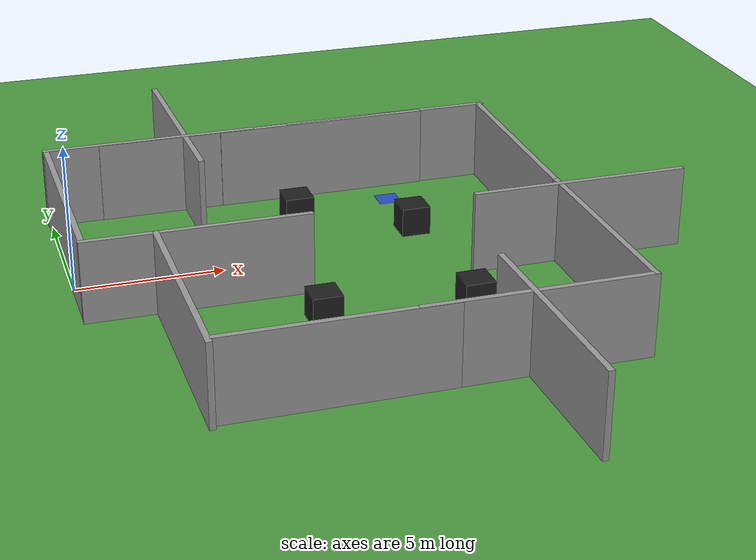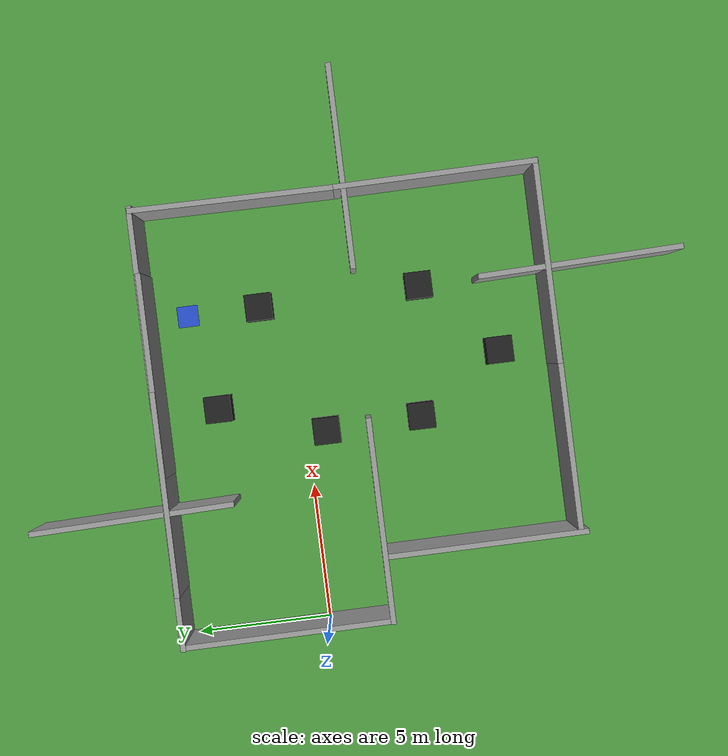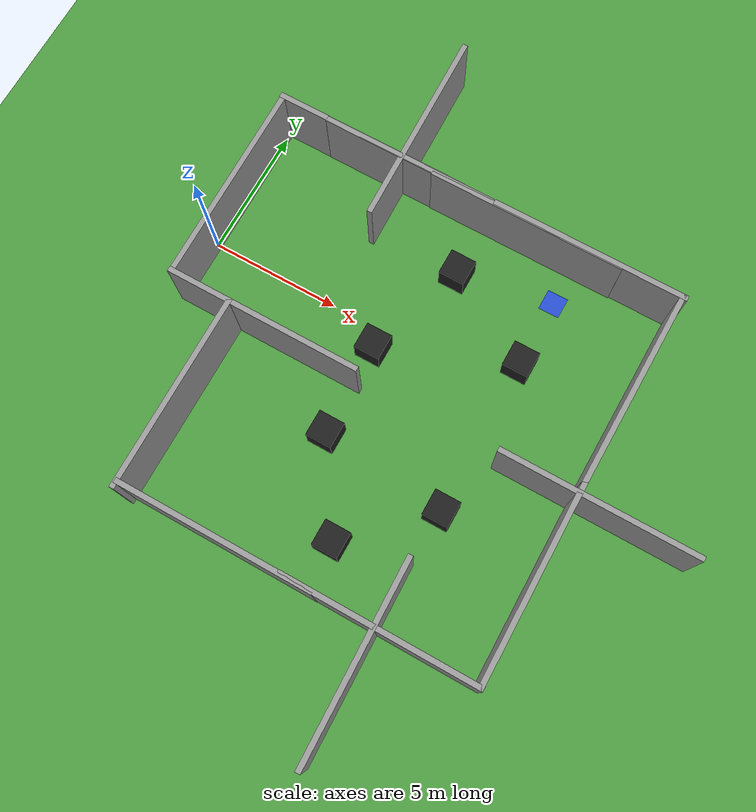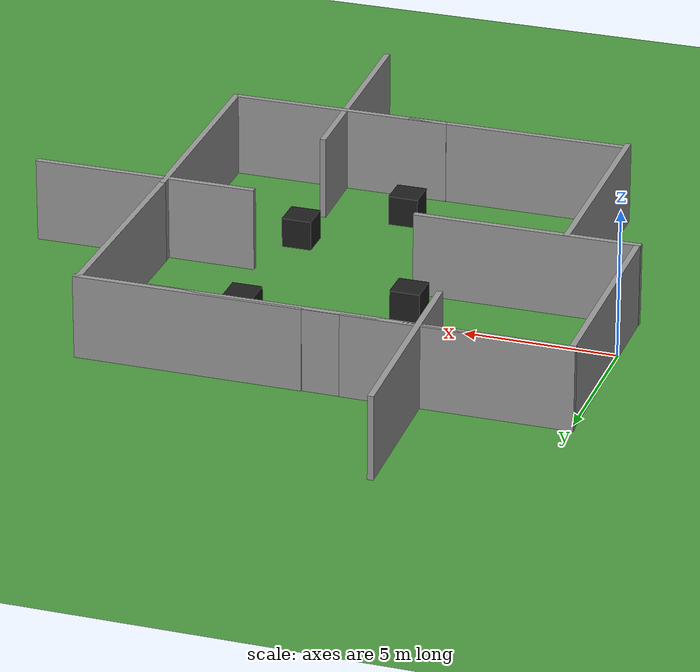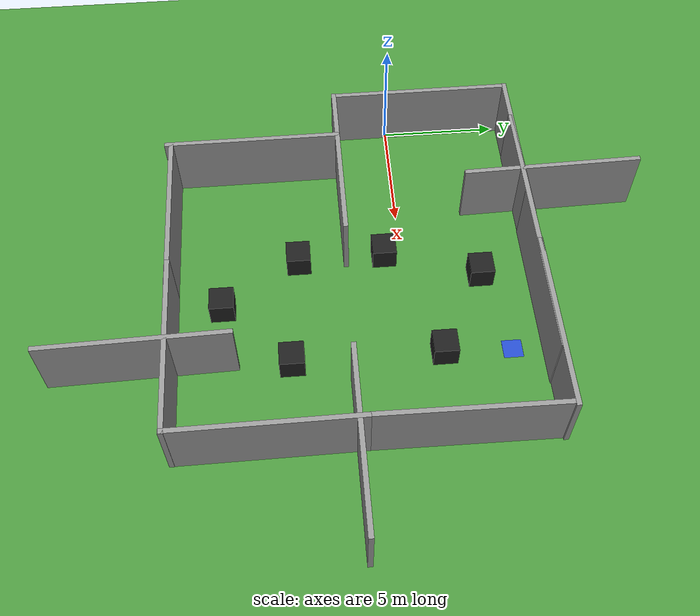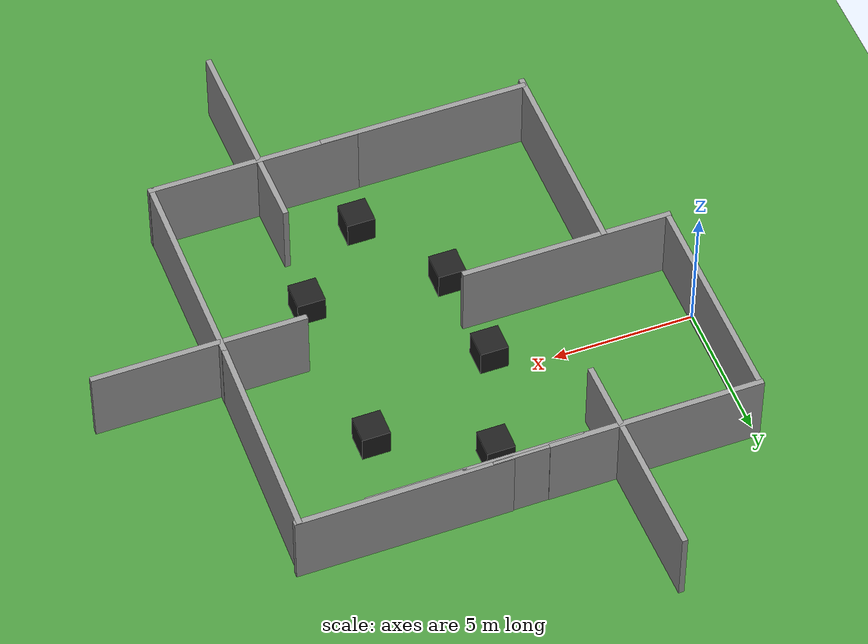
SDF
<sdf version="1.7">
 <world name="default">
  <model name="ground_plane">
   <static>1</static>
   <link name="link">
    <collision name="collision">
     <geometry><plane><normal>0 0 1</normal><size>100 100</size></plane></geometry>
     <surface><friction><ode><mu>100</mu><mu2>50</mu2></ode></friction></surface>
    </collision>
    <visual name="visual">
     <cast_shadows>0</cast_shadows>
     <geometry><plane><normal>0 0 1</normal><size>100 100</size></plane></geometry>
     <material>
      <script><uri>file://media/materials/scripts/gazebo.material</uri><name>Gazebo/Grass</name></script>
     </material>
    </visual>
   </link>
  </model>
  <model name="floor_special_12_4">
   <static>1</static>
   <link name="link">
    <collision name="collision">
     <geometry><plane><normal>0 0 2</normal><size>0.8 0.8</size></plane></geometry>
    </collision>
    <visual name="visual">
     <geometry><plane><normal>0 0 2</normal><size>0.8 0.8</size></plane></geometry>
     <material>
      <script><uri>file://media/materials/scripts/gazebo.material</uri><name>Gazebo/Blue</name></script>
     </material>
    </visual>
   </link>
   <pose>12 4 0.01 0 -0 0</pose>
  </model>
  <light name="sun" type="directional">
   <pose>0 0 10 0 -0 0</pose>
   <diffuse>0.8 0.8 0.8 1</diffuse>
   <specular>0.1 0.1 0.1 1</specular>
   <attenuation>
    <range>1000</range>
    <constant>0.9</constant>
    <linear>0.01</linear>
    <quadratic>0.001</quadratic>
   </attenuation>
   <direction>-0.5 0.5 -1</direction>
   <spot><inner_angle>0</inner_angle><outer_angle>0</outer_angle><falloff>0</falloff></spot>
  </light>
  <physics name="default_physics" default="0" type="ode">
   <max_step_size>0.001</max_step_size>
   <real_time_factor>1</real_time_factor>
   <real_time_update_rate>1000</real_time_update_rate>
  </physics>
  <gravity>0 0 -9.81</gravity>
  <magnetic_field>6e-06 2.3e-05 -4.2e-05</magnetic_field>
  <atmosphere type="adiabatic"/>
  <scene><ambient>0.4 0.4 0.4 1</ambient><background>0.7 0.7 0.7 1</background><shadows>1</shadows></scene>
  <spherical_coordinates>
   <surface_model>EARTH_WGS84</surface_model>
   <latitude_deg>0</latitude_deg>
   <longitude_deg>0</longitude_deg>
   <elevation>0</elevation>
   <heading_deg>0</heading_deg>
  </spherical_coordinates>
  <model name="grey_wall">
   <static>1</static>
   <link name="link">
    <pose>0 0 1.4 0 -0 0</pose>
    <collision name="collision"><geometry><box><size>7.5 0.2 2.8</size></box></geometry></collision>
    <visual name="visual">
     <cast_shadows>0</cast_shadows>
     <geometry><box><size>7.5 0.2 2.8</size></box></geometry>
     <material>
      <script>
       <uri>model://grey_wall/materials/scripts</uri>
       <uri>model://grey_wall/materials/textures</uri>
       <name>vrc/grey_wall</name>
      </script>
     </material>
    </visual>
   </link>
   <pose>5.57602 5.30516 0 0 -0 0</pose>
  </model>
  <model name="grey_wall_0">
   <static>1</static>
   <link name="link">
    <pose>0 0 1.4 0 -0 0</pose>
    <collision name="collision"><geometry><box><size>7.5 0.2 2.8</size></box></geometry></collision>
    <visual name="visual">
     <cast_shadows>0</cast_shadows>
     <geometry><box><size>7.5 0.2 2.8</size></box></geometry>
     <material>
      <script>
       <uri>model://grey_wall/materials/scripts</uri>
       <uri>model://grey_wall/materials/textures</uri>
       <name>vrc/grey_wall</name>
      </script>
     </material>
    </visual>
   </link>
   <pose>3.62616 5.3185 0 0 -0 0</pose>
  </model>
  <model name="grey_wall_1">
   <static>1</static>
   <link name="link">
    <pose>0 0 1.4 0 -0 0</pose>
    <collision name="collision"><geometry><box><size>7.5 0.2 2.8</size></box></geometry></collision>
    <visual name="visual">
     <cast_shadows>0</cast_shadows>
     <geometry><box><size>7.5 0.2 2.8</size></box></geometry>
     <material>
      <script>
       <uri>model://grey_wall/materials/scripts</uri>
       <uri>model://grey_wall/materials/textures</uri>
       <name>vrc/grey_wall</name>
      </script>
     </material>
    </visual>
   </link>
   <pose>9.8983 5.28766 0 0 -0 0</pose>
  </model>
  <model name="grey_wall_2">
   <static>1</static>
   <link name="link">
    <pose>0 0 1.4 0 -0 0</pose>
    <collision name="collision"><geometry><box><size>7.5 0.2 2.8</size></box></geometry></collision>
    <visual name="visual">
     <cast_shadows>0</cast_shadows>
     <geometry><box><size>7.5 0.2 2.8</size></box></geometry>
     <material>
      <script>
       <uri>model://grey_wall/materials/scripts</uri>
       <uri>model://grey_wall/materials/textures</uri>
       <name>vrc/grey_wall</name>
      </script>
     </material>
    </visual>
   </link>
   <pose>15.8945 1.65724 0 0 0 -1.57903</pose>
  </model>
  <model name="grey_wall_4">
   <static>1</static>
   <link name="link">
    <pose>0 0 1.4 0 -0 0</pose>
    <collision name="collision"><geometry><box><size>7.5 0.2 2.8</size></box></geometry></collision>
    <visual name="visual">
     <cast_shadows>0</cast_shadows>
     <geometry><box><size>7.5 0.2 2.8</size></box></geometry>
     <material>
      <script>
       <uri>model://grey_wall/materials/scripts</uri>
       <uri>model://grey_wall/materials/textures</uri>
       <name>vrc/grey_wall</name>
      </script>
     </material>
    </visual>
   </link>
   <pose>3.68458 -2.34632 0 0 -0 0</pose>
  </model>
  <model name="grey_wall_5">
   <static>1</static>
   <link name="link">
    <pose>0 0 1.4 0 -0 0</pose>
    <collision name="collision"><geometry><box><size>7.5 0.2 2.8</size></box></geometry></collision>
    <visual name="visual">
     <cast_shadows>0</cast_shadows>
     <geometry><box><size>7.5 0.2 2.8</size></box></geometry>
     <material>
      <script>
       <uri>model://grey_wall/materials/scripts</uri>
       <uri>model://grey_wall/materials/textures</uri>
       <name>vrc/grey_wall</name>
      </script>
     </material>
    </visual>
   </link>
   <pose>15.9016 -5.80972 0 0 0 -1.56242</pose>
  </model>
  <model name="grey_wall_7">
   <static>1</static>
   <link name="link">
    <pose>0 0 1.4 0 -0 0</pose>
    <collision name="collision"><geometry><box><size>7.5 0.2 2.8</size></box></geometry></collision>
    <visual name="visual">
     <cast_shadows>0</cast_shadows>
     <geometry><box><size>7.5 0.2 2.8</size></box></geometry>
     <material>
      <script>
       <uri>model://grey_wall/materials/scripts</uri>
       <uri>model://grey_wall/materials/textures</uri>
       <name>vrc/grey_wall</name>
      </script>
     </material>
    </visual>
   </link>
   <pose>0.028426 1.48542 0 0 0 -1.56467</pose>
  </model>
  <model name="grey_wall_10">
   <static>1</static>
   <link name="link">
    <pose>0 0 1.4 0 -0 0</pose>
    <collision name="collision"><geometry><box><size>7.5 0.2 2.8</size></box></geometry></collision>
    <visual name="visual">
     <cast_shadows>0</cast_shadows>
     <geometry><box><size>7.5 0.2 2.8</size></box></geometry>
     <material>
      <script>
       <uri>model://grey_wall/materials/scripts</uri>
       <uri>model://grey_wall/materials/textures</uri>
       <name>vrc/grey_wall</name>
      </script>
     </material>
    </visual>
   </link>
   <pose>2.392 -6.01294 0 0 0 -1.56521</pose>
  </model>
  <model name="grey_wall_11">
   <static>1</static>
   <link name="link">
    <pose>0 0 1.4 0 -0 0</pose>
    <collision name="collision"><geometry><box><size>7.5 0.2 2.8</size></box></geometry></collision>
    <visual name="visual">
     <cast_shadows>0</cast_shadows>
     <geometry><box><size>7.5 0.2 2.8</size></box></geometry>
     <material>
      <script>
       <uri>model://grey_wall/materials/scripts</uri>
       <uri>model://grey_wall/materials/textures</uri>
       <name>vrc/grey_wall</name>
      </script>
     </material>
    </visual>
   </link>
   <pose>12.2945 -9.46838 0 0 -0 0</pose>
  </model>
  <model name="grey_wall_13">
   <static>1</static>
   <link name="link">
    <pose>0 0 1.4 0 -0 0</pose>
    <collision name="collision"><geometry><box><size>7.5 0.2 2.8</size></box></geometry></collision>
    <visual name="visual">
     <cast_shadows>0</cast_shadows>
     <geometry><box><size>7.5 0.2 2.8</size></box></geometry>
     <material>
      <script>
       <uri>model://grey_wall/materials/scripts</uri>
       <uri>model://grey_wall/materials/textures</uri>
       <name>vrc/grey_wall</name>
      </script>
     </material>
    </visual>
   </link>
   <pose>6.11059 -9.47971 0 0 -0 0</pose>
  </model>
  <model name="grey_wall_21">
   <static>1</static>
   <link name="link">
    <pose>0 0 1.4 0 -0 0</pose>
    <collision name="collision"><geometry><box><size>7.5 0.2 2.8</size></box></geometry></collision>
    <visual name="visual">
     <cast_shadows>0</cast_shadows>
     <geometry><box><size>7.5 0.2 2.8</size></box></geometry>
     <material>
      <script>
       <uri>model://grey_wall/materials/scripts</uri>
       <uri>model://grey_wall/materials/textures</uri>
       <name>vrc/grey_wall</name>
      </script>
     </material>
    </visual>
   </link>
   <pose>12.3522 5.32968 0 0 -0 0</pose>
  </model>
  <model name="grey_wall_28">
   <static>1</static>
   <link name="link">
    <pose>0 0 1.4 0 -0 0</pose>
    <collision name="collision"><geometry><box><size>7.5 0.2 2.8</size></box></geometry></collision>
    <visual name="visual">
     <cast_shadows>0</cast_shadows>
     <geometry><box><size>7.5 0.2 2.8</size></box></geometry>
     <material>
      <script>
       <uri>model://grey_wall/materials/scripts</uri>
       <uri>model://grey_wall/materials/textures</uri>
       <name>vrc/grey_wall</name>
      </script>
     </material>
    </visual>
   </link>
   <pose>16.6058 -2.4643 0 0 -0 0</pose>
  </model>
  <model name="unit_box_0">
   <pose>9.29592 -7.55171 0.505 0 -0 0</pose>
   <link name="link">
    <inertial>
     <mass>1</mass>
     <inertia>
      <ixx>0.166667</ixx>
      <ixy>0</ixy>
      <ixz>0</ixz>
      <iyy>0.166667</iyy>
      <iyz>0</iyz>
      <izz>0.166667</izz>
     </inertia>
    </inertial>
    <collision name="collision"><geometry><box><size>1 1 1</size></box></geometry></collision>
    <visual name="visual">
     <geometry><box><size>1 1 1</size></box></geometry>
     <material>
      <script><name>Gazebo/FlatBlack</name><uri>file://media/materials/scripts/gazebo.material</uri></script>
     </material>
    </visual>
   </link>
  </model>
  <model name="unit_box_1">
   <pose>7.19763 -4.34456 0.505 0 -0 0</pose>
   <link name="link">
    <inertial>
     <mass>1</mass>
     <inertia>
      <ixx>0.166667</ixx>
      <ixy>0</ixy>
      <ixz>0</ixz>
      <iyy>0.166667</iyy>
      <iyz>0</iyz>
      <izz>0.166667</izz>
     </inertia>
    </inertial>
    <collision name="collision"><geometry><box><size>1 1 1</size></box></geometry></collision>
    <visual name="visual">
     <geometry><box><size>1 1 1</size></box></geometry>
     <material>
      <script><name>Gazebo/FlatBlack</name><uri>file://media/materials/scripts/gazebo.material</uri></script>
     </material>
    </visual>
   </link>
  </model>
  <model name="unit_box_3">
   <pose>7.07102 -0.73722 0.505 0 -0 0</pose>
   <link name="link">
    <inertial>
     <mass>1</mass>
     <inertia>
      <ixx>0.166667</ixx>
      <ixy>0</ixy>
      <ixz>0</ixz>
      <iyy>0.166667</iyy>
      <iyz>0</iyz>
      <izz>0.166667</izz>
     </inertia>
    </inertial>
    <collision name="collision"><geometry><box><size>1 1 1</size></box></geometry></collision>
    <visual name="visual">
     <geometry><box><size>1 1 1</size></box></geometry>
     <material>
      <script><name>Gazebo/FlatBlack</name><uri>file://media/materials/scripts/gazebo.material</uri></script>
     </material>
    </visual>
   </link>
  </model>
  <model name="unit_box_4">
   <pose>8.36826 3.20481 0.505 0 -0 0</pose>
   <link name="link">
    <inertial>
     <mass>1</mass>
     <inertia>
      <ixx>0.166667</ixx>
      <ixy>0</ixy>
      <ixz>0</ixz>
      <iyy>0.166667</iyy>
      <iyz>0</iyz>
      <izz>0.166667</izz>
     </inertia>
    </inertial>
    <collision name="collision"><geometry><box><size>1 1 1</size></box></geometry></collision>
    <visual name="visual">
     <geometry><box><size>1 1 1</size></box></geometry>
     <material>
      <script><name>Gazebo/FlatBlack</name><uri>file://media/materials/scripts/gazebo.material</uri></script>
     </material>
    </visual>
   </link>
  </model>
  <model name="unit_box_7">
   <pose>12.0721 -4.82528 0.505 0 -0 0</pose>
   <link name="link">
    <inertial>
     <mass>1</mass>
     <inertia>
      <ixx>0.166667</ixx>
      <ixy>0</ixy>
      <ixz>0</ixz>
      <iyy>0.166667</iyy>
      <iyz>0</iyz>
      <izz>0.166667</izz>
     </inertia>
    </inertial>
    <collision name="collision"><geometry><box><size>1 1 1</size></box></geometry></collision>
    <visual name="visual">
     <geometry><box><size>1 1 1</size></box></geometry>
     <material>
      <script><name>Gazebo/FlatBlack</name><uri>file://media/materials/scripts/gazebo.material</uri></script>
     </material>
    </visual>
   </link>
  </model>
  <model name="unit_box_8">
   <pose>11.9897 1.23089 0.505 0 -0 0</pose>
   <link name="link">
    <inertial>
     <mass>1</mass>
     <inertia>
      <ixx>0.166667</ixx>
      <ixy>0</ixy>
      <ixz>0</ixz>
      <iyy>0.166667</iyy>
      <iyz>0</iyz>
      <izz>0.166667</izz>
     </inertia>
    </inertial>
    <collision name="collision"><geometry><box><size>1 1 1</size></box></geometry></collision>
    <visual name="visual">
     <geometry><box><size>1 1 1</size></box></geometry>
     <material>
      <script><name>Gazebo/FlatBlack</name><uri>file://media/materials/scripts/gazebo.material</uri></script>
     </material>
    </visual>
   </link>
  </model>
  <model name="grey_wall_3">
   <static>1</static>
   <link name="link">
    <pose>0 0 1.4 0 -0 0</pose>
    <collision name="collision"><geometry><box><size>7.5 0.2 2.8</size></box></geometry></collision>
    <visual name="visual">
     <cast_shadows>0</cast_shadows>
     <geometry><box><size>7.5 0.2 2.8</size></box></geometry>
     <material>
      <script>
       <uri>model://grey_wall/materials/scripts</uri>
       <uri>model://grey_wall/materials/textures</uri>
       <name>vrc/grey_wall</name>
      </script>
     </material>
    </visual>
   </link>
   <pose>4.85431 6.60095 0 0 0 -1.54567</pose>
  </model>
  <model name="grey_wall_3_clone">
   <static>1</static>
   <link name="link">
    <pose>0 0 1.4 0 -0 0</pose>
    <collision name="collision"><geometry><box><size>7.5 0.2 2.8</size></box></geometry></collision>
    <visual name="visual">
     <cast_shadows>0</cast_shadows>
     <geometry><box><size>7.5 0.2 2.8</size></box></geometry>
     <material>
      <script>
       <uri>model://grey_wall/materials/scripts</uri>
       <uri>model://grey_wall/materials/textures</uri>
       <name>vrc/grey_wall</name>
      </script>
     </material>
    </visual>
   </link>
   <pose>12.117 -10.6635 0 0 0 -1.54567</pose>
  </model>
 </world>
</sdf>
